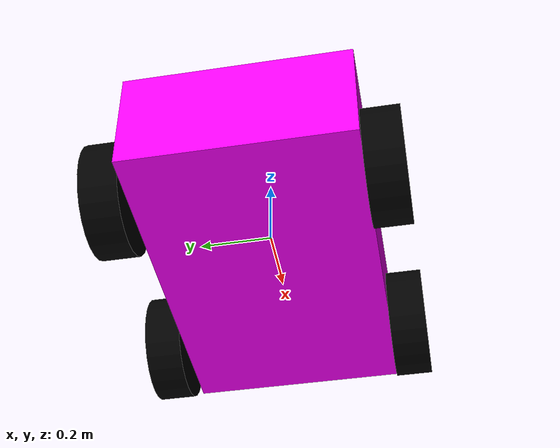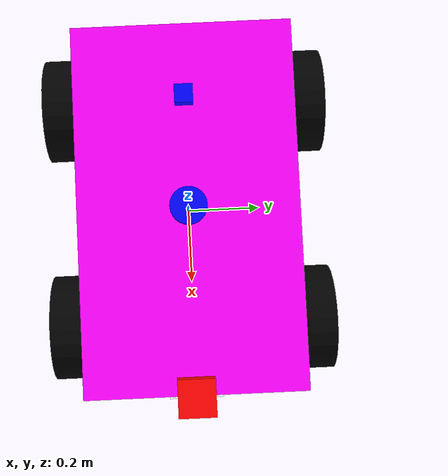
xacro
<?xml version="1.0"?>
<robot name="differential_drive_robot"
    xmlns:xacro="http://www.ros.org/wiki/xacro">

    <!--body dimnsion-->
    <xacro:property name="bodyLinkx" value="1"/>
    <xacro:property name="bodyLinky" value="0.6"/>
    <xacro:property name="bodyLinkz" value="0.3"/>

    <!--wheel dimesnion-->

    <xacro:property name="WheelLinkRadius" value="0.15"/>
    <xacro:property name="WheelLinkThick" value="0.1"/>
    <xacro:property name="WheelLinkLocaZ" value="-0.1"/>

    <!-- Materail density-->
    <xacro:property name="BodyDense" value="2500"/>
    <xacro:property name="WheelDense" value="2500"/>

    <xacro:property name="PI" value="3.14159265"/>

    <!--mass and stuff-->

    <xacro:property name="BodyMass" value="${BodyDense*bodyLinkx*bodyLinky*bodyLinkz}"/>
    <xacro:property name="WheelMass" value="${WheelDense*PI*WheelLinkRadius*WheelLinkRadius*WheelLinkThick}"/>

    <!--moment of intia-->
    <xacro:property name="IzWheel" value="${0.5*WheelMass*WheelLinkRadius*WheelLinkRadius}"/>
    <xacro:property name="IWheel" value="${(1.0/12.0)*WheelMass*(3.0*WheelLinkRadius*WheelLinkRadius+WheelLinkThick*WheelLinkThick)}"/>

    <xacro:macro name="InertiaWheel">
        <inertial>
            <origin rpy="0 0 0" xyz="0 0 0"/>
            <mass value="${WheelMass}"/>
            <inertia ixx="${IWheel}" ixy="0.0" ixz="0.0" iyy="${IWheel}" iyz="0" izz="${IzWheel}" />
        </inertial>
    </xacro:macro>

    <!--gazebo file include-->

    <xacro:include filename="$(find robot_wheel)/model/robot.gazebo" />

    <!-- links and stuff-->

    <!-- IDK wy dummy link but  gazebo yaps a lot-->

    <link name="base_footprint">
    </link>
    <joint name="base_footprint_joint" type="fixed">
        <parent link="BodyLink"/>
        <child link="base_footprint"/>
        <origin xyz="0.0 0.0 0.0" rpy="0.0 0.0 0.0"/>

    </joint>
    <link name="base_link">
    </link>
    <joint name="base_link_joint" type="fixed">
        <parent link="BodyLink"/>
        <child link="base_link"/>
        <origin xyz="0.0 0.0 0.0" rpy="0.0 0.0 0.0"/>

    </joint>

    <!--crazy links-->
    <link name="BodyLink">
        <visual>
            <geometry>
                <box size="${bodyLinkx} ${bodyLinky} ${bodyLinkz}"/>
            </geometry>
            <origin rpy="0 0 0" xyz="0 0 0"/>
            <material name="yellow">
                <color rgba="1.0 0.0 1.0 1.0"/>
            </material>
        </visual>

        <collision>
            <geometry>
                <box size="${bodyLinkx} ${bodyLinky} ${bodyLinkz}"/>
            </geometry>
            <origin rpy="0 0 0" xyz="0 0 0"/>
        </collision>

        <inertial>
            <origin rpy="0 0 0" xyz="0 0 0"/>
            <mass value="${BodyMass}"/>
            <inertia ixx="${(1.0/12.0) * BodyMass * (bodyLinky * bodyLinky + bodyLinkz * bodyLinkz)}" ixy="0.0" ixz="0.0" iyy="${(1.0/12.0) * BodyMass * (bodyLinkx * bodyLinkx + bodyLinkz * bodyLinkz)}" iyz="0.0" izz="${(1.0/12.0) * BodyMass * (bodyLinky * bodyLinky + bodyLinkx * bodyLinkx)}"/>
        </inertial>
    </link>

    <!--joint hell-->
    <joint name="Wheel1Joint" type="continuous">
        <parent link="BodyLink"/>
        <child link="Wheel1Link"/>
        <origin xyz="${-(bodyLinkx/2)+1.2*WheelLinkRadius} ${-(bodyLinky/2)-WheelLinkThick/2} ${WheelLinkLocaZ}" rpy="0 0 0"/>
        <axis xyz="0 1 0"/>
        <limit effort="1000" velocity="1000"/>
        <dynamics damping="1.0" friction="1.0"/>
    </joint>

    <link name="Wheel1Link">
        <visual>
            <origin xyz="0 0 0" rpy="1.570795 0 0"/>
            <geometry>
                <cylinder radius="${WheelLinkRadius}" length="${WheelLinkThick}"/>
            </geometry>
            <material name="black">
                <color rgba="0.0 0.0 0.0 1.0"/>
            </material>
        </visual>

        <collision>
            <origin xyz="0 0 0" rpy="1.570795 0 0"/>
        </collision>
        <xacro:InertiaWheel/>
    </link>

    <joint name="Wheel2Joint" type="continuous">
        <parent link="BodyLink"/>
        <child link="Wheel2Link"/>
        <origin xyz="${-(bodyLinkx/2)+1.2*WheelLinkRadius} ${(bodyLinky/2)+WheelLinkThick/2} ${WheelLinkLocaZ}" rpy="0 0 0"/>
        <axis xyz="0 1 0"/>
        <limit effort="1000" velocity="1000"/>
        <dynamics damping="1.0" friction="1.0"/>
    </joint>

    <link name="Wheel2Link">
        <visual>
            <origin xyz="0 0 0" rpy="1.570795 0 0"/>
            <geometry>
                <cylinder radius="${WheelLinkRadius}" length="${WheelLinkThick}"/>
            </geometry>
            <material name="black">
                <color rgba="0.0 0.0 0.0 1.0"/>
            </material>
        </visual>

        <collision>
            <origin xyz="0 0 0" rpy="1.570795 0 0"/>
            <geometry>
                <cylinder radius="${WheelLinkRadius}" length="${WheelLinkThick}"/>
            </geometry>
        </collision>
        <xacro:InertiaWheel/>
    </link>

    <joint name="Wheel3Joint" type="continuous">
        <parent link="BodyLink"/>
        <child link="Wheel3Link"/>
        <origin xyz="${(bodyLinkx/2)-1.2*WheelLinkRadius} ${-(bodyLinky/2)-WheelLinkThick/2} ${WheelLinkLocaZ}" rpy="0 0 0"/>
        <axis xyz="0 1 0"/>
        <limit effort="1000" velocity="1000"/>
        <dynamics damping="1.0" friction="1.0"/>
    </joint>

    <link name="Wheel3Link">
        <visual>
            <origin xyz="0 0 0" rpy="1.570795 0 0"/>
            <geometry>
                <cylinder radius="${WheelLinkRadius}" length="${WheelLinkThick}"/>
            </geometry>
            <material name="black">
                <color rgba="0.0 0.0 0.0 1.0"/>
            </material>
        </visual>

        <collision>
            <origin xyz="0 0 0" rpy="1.570795 0 0"/>
            <geometry>
                <cylinder radius="${WheelLinkRadius}" length="${WheelLinkThick}"/>
            </geometry>
        </collision>
        <xacro:InertiaWheel/>
    </link>

    <joint name="Wheel4Joint" type="continuous">
        <parent link="BodyLink"/>
        <child link="Wheel4Link"/>
        <origin xyz="${(bodyLinkx/2)-1.2*WheelLinkRadius} ${(bodyLinky/2)+WheelLinkThick/2} ${WheelLinkLocaZ}" rpy="0 0 0"/>
        <axis xyz="0 1 0"/>
        <limit effort="1000" velocity="1000"/>
        <dynamics damping="1.0" friction="1.0"/>
    </joint>

    <link name="Wheel4Link">
        <visual>
            <origin xyz="0 0 0" rpy="1.570795 0 0"/>
            <geometry>
                <cylinder radius="${WheelLinkRadius}" length="${WheelLinkThick}"/>
            </geometry>
            <material name="black">
                <color rgba="0.0 0.0 0.0 1.0"/>
            </material>
        </visual>

        <collision>
            <origin xyz="0 0 0" rpy="1.570795 0 0"/>
            <geometry>
                <cylinder radius="${WheelLinkRadius}" length="${WheelLinkThick}"/>
            </geometry>
        </collision>
        <xacro:InertiaWheel/>
    </link>

    <!--done booyah-->
    <!--gps sensor-->

    <link name="gpsLink">
        <visual>
            <geometry>
                <box size="0.05 0.05 0.05"/>
            </geometry>
            <material name="blue">
                <color rgba="0.0 0.0 1.0 1.0"/>
            </material>
        </visual>
    </link>

    <joint name="gpsJoint" type="fixed">
        <parent link="BodyLink"/>
        <child link="gpsLink"/>
        <origin xyz="-0.3 0 ${bodyLinkz/2+0.02}"/>
    </joint>

    <link name="imuLink">
        <visual>
            <geometry>
                <box size="0.1 0.1 0.1"/>
            </geometry>
            <material name="red">
                <color rgba="1.0 0.0 0.0 1.0 "/>
            </material>
        </visual>
    </link>

    <joint name="imuJoint" type="fixed">
        <parent link="BodyLink"/>
        <child link="imuLink"/>
        <origin xyz="${bodyLinkx/2} 0.0 ${bodyLinkz/2}" rpy=" 0 0 0"/>
    </joint>

    <link name="lidarLink">
        <visual>
            <material name="blue">
                <color rgba="0.0 0.0 1.0 1.0"/>
            </material>
            <geometry>
                <cylinder radius="0.05" length="0.03"/>
            </geometry>
        </visual>
    </link>

    <joint name="lidarJoint" type="fixed">
        <parent link="BodyLink"/>
        <child link="lidarLink"/>
        <origin xyz="0.0 0.0 ${(bodyLinkz/2)+0.05}" rpy=" 0 0 0"/>
    </joint>

    <link name="zed2_link">
        <!-- Adjusted position -->
        <visual>
            <geometry>
                <box size="0.05 0.15 0.03"/>
            </geometry>
            <material name="white">
                <color rgba="1.0 1.0 1.0 1.0"/>
            </material>
        </visual>
        <collision>
            <geometry>
                <box size="0.05 0.15 0.03"/>
            </geometry>
        </collision>
        <inertial>
            <mass value="0.3"/>
            <inertia ixx="0.001" ixy="0.0" ixz="0.0" iyy="0.001" iyz="0.0" izz="0.001"/>
        </inertial>
    </link>

    <!-- Joint to attach to base_link -->
    <joint name="zed2_joint" type="fixed">
        <parent link="BodyLink"/>
        <child link="zed2_link"/>
        <origin xyz="${bodyLinkx/2} 0 0.0" rpy="0 0 0"/>
        <!-- Adjusted height -->
    </joint>

</robot>
